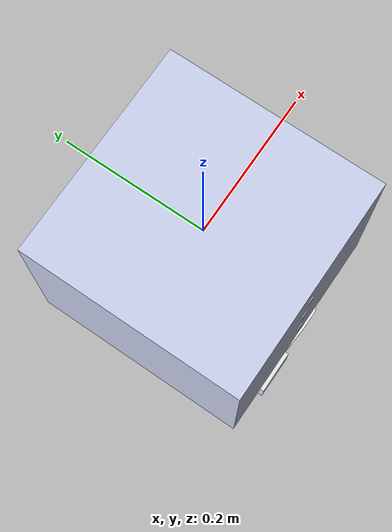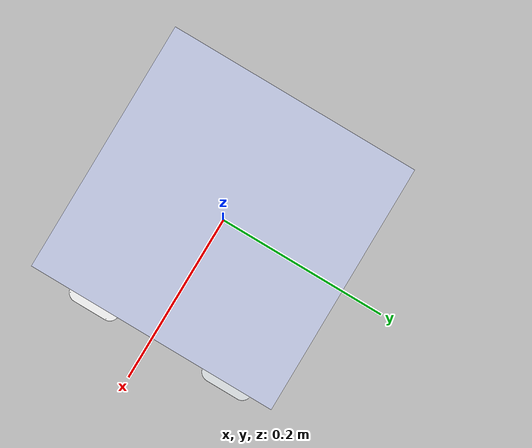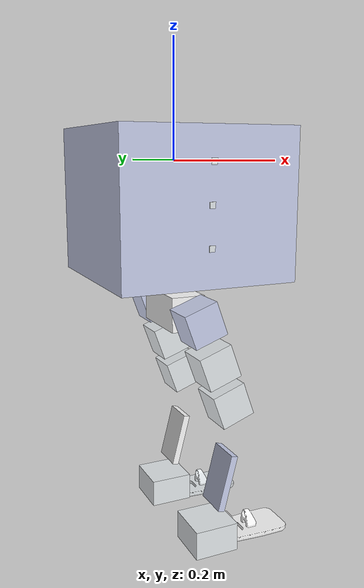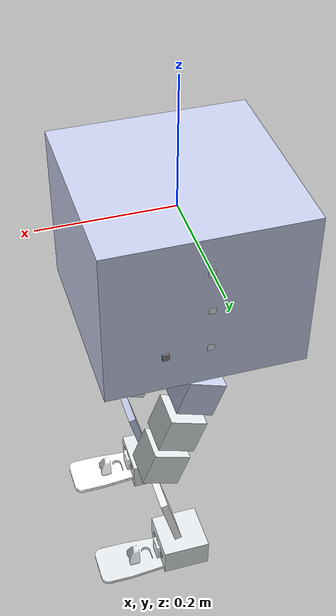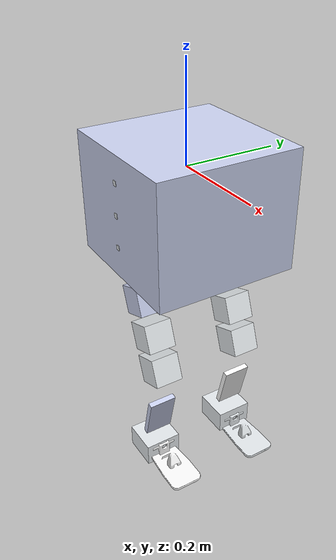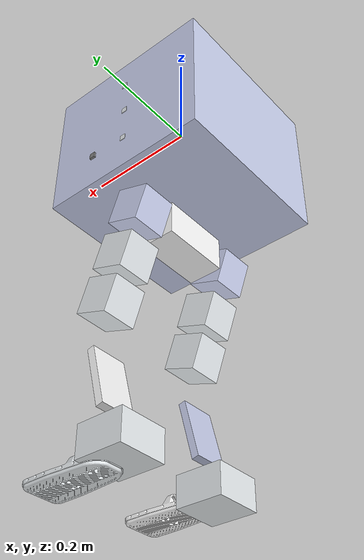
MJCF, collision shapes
<mujoco model="hi_cl_23_240925">
  <compiler angle="radian" meshdir="../meshes/" autolimits="true"/>
  <statistic meansize="0.118985" extent="0.96937" center="0 0 -0.30025"/>
  <asset>
    <mesh name="base_link" file="base_link.STL"/>
    <mesh name="r_shoulder_pitch_link" file="r_shoulder_pitch_link.STL"/>
    <mesh name="r_shoulder_roll_link" file="r_shoulder_roll_link.STL"/>
    <mesh name="r_arm_yaw_link" file="r_arm_yaw_link.STL"/>
    <mesh name="r_arm_roll_link" file="r_arm_roll_link.STL"/>
    <mesh name="r_wrist_yaw_link" file="r_wrist_yaw_link.STL"/>
    <mesh name="l_shoulder_pitch_link" file="l_shoulder_pitch_link.STL"/>
    <mesh name="l_shoulder_roll_link" file="l_shoulder_roll_link.STL"/>
    <mesh name="l_arm_yaw_link" file="l_arm_yaw_link.STL"/>
    <mesh name="l_arm_roll_link" file="l_arm_roll_link.STL"/>
    <mesh name="l_wrist_yaw_link" file="l_wrist_yaw_link.STL"/>
    <mesh name="loin_yaw_link" file="loin_yaw_link.STL"/>
    <mesh name="r_hip_pitch_link" file="r_hip_pitch_link.STL"/>
    <mesh name="r_hip_roll_link" file="r_hip_roll_link.STL"/>
    <mesh name="r_thigh_link" file="r_thigh_link.STL"/>
    <mesh name="r_calf_link" file="r_calf_link.STL"/>
    <mesh name="r_ankle_pitch_link" file="r_ankle_pitch_link.STL"/>
    <mesh name="r_ankle_roll_link" file="r_ankle_roll_link.STL"/>
    <mesh name="l_hip_pitch_link" file="l_hip_pitch_link.STL"/>
    <mesh name="l_hip_roll_link" file="l_hip_roll_link.STL"/>
    <mesh name="l_thigh_link" file="l_thigh_link.STL"/>
    <mesh name="l_calf_link" file="l_calf_link.STL"/>
    <mesh name="l_ankle_pitch_link" file="l_ankle_pitch_link.STL"/>
    <mesh name="l_ankle_roll_link" file="l_ankle_roll_link.STL"/>
  </asset>
  <worldbody>
    <body name="base_link">
      <inertial pos="0.00381055 0.000553964 -0.0813881" quat="0.929224 0.368892 -0.0201387 0.00744773" mass="8.17529" diaginertia="0.132187 0.0713242 0.0707874"/>
      <joint name="base_link_free_joint" type="free"/>
      <geom type="mesh" contype="0" conaffinity="0" group="1" density="0" rgba="0.79216 0.81961 0.93333 1" mesh="base_link"/>
      <geom size="0.15 0.15 0.125" pos="0 0 -0.07" type="box" rgba="0.79216 0.81961 0.93333 1"/>
      <geom pos="0 -0.08085 0" type="mesh" contype="0" conaffinity="0" group="1" density="0" rgba="0.89804 0.91765 0.92941 1" mesh="r_shoulder_pitch_link"/>
      <geom size="0.005 0.005 0.005" pos="0 -0.08085 0" type="box" rgba="0.89804 0.91765 0.92941 1"/>
      <geom pos="0 -0.146 0" type="mesh" contype="0" conaffinity="0" group="1" density="0" rgba="0.89804 0.91765 0.92941 1" mesh="r_shoulder_roll_link"/>
      <geom size="0.005 0.005 0.005" pos="0 -0.146 0" type="box" rgba="0.89804 0.91765 0.92941 1"/>
      <geom pos="-0.0026 -0.146 -0.06495" quat="0.707107 0 0 0.707107" type="mesh" contype="0" conaffinity="0" group="1" density="0" rgba="0.89804 0.91765 0.92941 1" mesh="r_arm_yaw_link"/>
      <geom size="0.005 0.005 0.005" pos="-0.0026 -0.146 -0.06495" quat="0.707107 0 0 0.707107" type="box" rgba="0.89804 0.91765 0.92941 1"/>
      <geom pos="-0.0026 -0.146 -0.1314" quat="0.5 -0.5 -0.5 0.5" type="mesh" contype="0" conaffinity="0" group="1" density="0" rgba="0.89804 0.91765 0.92941 1" mesh="r_arm_roll_link"/>
      <geom size="0.005 0.005 0.005" pos="-0.0026 -0.146 -0.1314" quat="0.5 -0.5 -0.5 0.5" type="box" rgba="0.89804 0.91765 0.92941 1"/>
      <geom pos="0.06235 -0.1434 -0.1314" quat="0.5 -0.5 -0.5 0.5" type="mesh" contype="0" conaffinity="0" group="1" density="0" rgba="0.49804 0.49804 0.49804 1" mesh="r_wrist_yaw_link"/>
      <geom size="0.005 0.005 0.005" pos="0.06235 -0.1434 -0.1314" quat="0.5 -0.5 -0.5 0.5" type="box" rgba="0.49804 0.49804 0.49804 1"/>
      <geom pos="0 0.08085 0" type="mesh" contype="0" conaffinity="0" group="1" density="0" rgba="1 1 1 1" mesh="l_shoulder_pitch_link"/>
      <geom size="0.005 0.005 0.005" pos="0 0.08085 0" type="box" rgba="1 1 1 1"/>
      <geom pos="0 0.146 0" type="mesh" contype="0" conaffinity="0" group="1" density="0" rgba="0.89804 0.91765 0.92941 1" mesh="l_shoulder_roll_link"/>
      <geom size="0.005 0.005 0.005" pos="0 0.146 0" type="box" rgba="0.89804 0.91765 0.92941 1"/>
      <geom pos="-0.0026 0.146 -0.06495" quat="0.707107 0 0 0.707107" type="mesh" contype="0" conaffinity="0" group="1" density="0" rgba="0.89804 0.91765 0.92941 1" mesh="l_arm_yaw_link"/>
      <geom size="0.005 0.005 0.005" pos="-0.0026 0.146 -0.06495" quat="0.707107 0 0 0.707107" type="box" rgba="0.89804 0.91765 0.92941 1"/>
      <geom pos="-0.0026 0.146 -0.1314" quat="0.5 -0.5 -0.5 0.5" type="mesh" contype="0" conaffinity="0" group="1" density="0" rgba="0.89804 0.91765 0.92941 1" mesh="l_arm_roll_link"/>
      <geom size="0.005 0.005 0.005" pos="-0.0026 0.146 -0.1314" quat="0.5 -0.5 -0.5 0.5" type="box" rgba="0.89804 0.91765 0.92941 1"/>
      <geom pos="0.06235 0.1486 -0.1314" quat="0.5 -0.5 -0.5 0.5" type="mesh" contype="0" conaffinity="0" group="1" density="0" rgba="0.49804 0.49804 0.49804 1" mesh="l_wrist_yaw_link"/>
      <geom size="0.005 0.005 0.005" pos="0.06235 0.1486 -0.1314" quat="0.5 -0.5 -0.5 0.5" type="box" rgba="0.49804 0.49804 0.49804 1"/>
      <geom pos="0 0 -0.19425" type="mesh" contype="0" conaffinity="0" group="1" density="0" rgba="1 1 1 1" mesh="loin_yaw_link"/>
      <geom size="0.03 0.06 0.03" pos="0 0 -0.25425" type="box" rgba="1 1 1 1"/>
      <body name="r_hip_pitch_link" pos="0 -0.02875 -0.2585" quat="0.984727 0 -0.174108 0">
        <inertial pos="-0.00022626 -0.06684 9.015e-05" quat="0.00547687 0.70814 0.00618691 0.706023" mass="0.661" diaginertia="0.000226308 0.000197812 0.00018617"/>
        <joint name="r_hip_pitch_joint" pos="0 0 0" axis="0 1 0" range="-1 1.8"/>
        <geom type="mesh" contype="0" conaffinity="0" group="1" density="0" rgba="0.79216 0.81961 0.93333 1" mesh="r_hip_pitch_link"/>
        <geom size="0.03 0.03 0.03" pos="0 -0.07 0" type="box" rgba="0.79216 0.81961 0.93333 1"/>
        <body name="r_hip_roll_link" pos="0 -0.06875 0">
          <inertial pos="0.00088845 -0.00019059 -0.066357" quat="0.706188 0.0128574 0.0153584 0.707741" mass="0.54219" diaginertia="0.00121651 0.000969831 0.000402787"/>
          <joint name="r_hip_roll_joint" pos="0 0 0" axis="1 0 0" range="-0.5 0.12"/>
          <geom type="mesh" contype="0" conaffinity="0" group="1" density="0" rgba="0.89804 0.91765 0.92941 1" mesh="r_hip_roll_link"/>
          <geom size="0.03 0.03 0.03" pos="0 0 -0.08" type="box" rgba="0.89804 0.91765 0.92941 1"/>
          <body name="r_thigh_link" pos="0 0 -0.09425">
            <inertial pos="0 0.0019897 -0.066297" quat="0.978272 0.207328 0 0" mass="0.23898" diaginertia="0.00050536 0.000333126 0.000283014"/>
            <joint name="r_thigh_joint" pos="0 0 0" axis="0 0 1" range="-0.6 0.3"/>
            <geom type="mesh" contype="0" conaffinity="0" group="1" density="0" rgba="0.89804 0.91765 0.92941 1" mesh="r_thigh_link"/>
            <geom size="0.03 0.03 0.03" pos="0 0 -0.06" type="box" rgba="0.89804 0.91765 0.92941 1"/>
            <body name="r_calf_link" pos="0 0 -0.10575" quat="0.955336 0 0.29552 0">
              <inertial pos="-8.965e-05 -0.0020679 -0.050651" quat="0.999997 -3.20864e-05 0.000268903 0.00258656" mass="1.2" diaginertia="0.0068013 0.006751 0.000347148"/>
              <joint name="r_calf_joint" pos="0 0 0" axis="0 1 0" range="-0.8 1.5"/>
              <geom type="mesh" contype="0" conaffinity="0" group="1" density="0" rgba="0.79216 0.81961 0.93333 1" mesh="r_calf_link"/>
              <geom size="0.006 0.03 0.05" pos="0 0 -0.1" type="box" rgba="0.79216 0.81961 0.93333 1"/>
              <body name="r_ankle_pitch_link" pos="0 0 -0.2" quat="0.992198 0 -0.124675 0">
                <inertial pos="0.0072806 0.00051939 2.2469e-12" quat="0.00438016 0.707093 -0.00438016 0.707093" mass="0.16682" diaginertia="0.00028526 0.000199412 0.000118688"/>
                <joint name="r_ankle_pitch_joint" pos="0 0 0" axis="0 1 0" range="-0.45 1.15"/>
                <geom type="mesh" contype="0" conaffinity="0" group="1" density="0" rgba="0.89804 0.91765 0.92941 1" mesh="r_ankle_pitch_link"/>
                <geom size="0.039 0.04 0.025" type="box" rgba="0.89804 0.91765 0.92941 1"/>
                <body name="r_ankle_roll_link" pos="0.07525 -0.0003 0">
                  <inertial pos="-0.040001 9.312e-05 -0.023563" quat="0.52257 0.475345 0.477488 0.522468" mass="0.5" diaginertia="0.00150711 0.00139424 0.000399275"/>
                  <joint name="r_ankle_roll_joint" pos="0 0 0" axis="1 0 0" range="-0.15 0.15"/>
                  <geom type="mesh" contype="0" conaffinity="0" group="1" density="0" rgba="1 1 1 1" mesh="r_ankle_roll_link"/>
                  <geom type="mesh" rgba="1 1 1 1" mesh="r_ankle_roll_link"/>
                </body>
              </body>
            </body>
          </body>
        </body>
      </body>
      <body name="l_hip_pitch_link" pos="0 0.02875 -0.2585" quat="0.984727 0 -0.174108 0">
        <inertial pos="-0.00022626 0.0670062 8.992e-05" quat="0.00901773 0.708032 -0.00287024 0.706117" mass="0.661" diaginertia="0.000226712 0.000197821 0.000186567"/>
        <joint name="l_hip_pitch_joint" pos="0 0 0" axis="0 1 0" range="-1 1.8"/>
        <geom type="mesh" contype="0" conaffinity="0" group="1" density="0" rgba="0.79216 0.81961 0.93333 1" mesh="l_hip_pitch_link"/>
        <geom size="0.03 0.03 0.03" pos="0 0.07 0" type="box" rgba="0.79216 0.81961 0.93333 1"/>
        <body name="l_hip_roll_link" pos="0 0.06875 0">
          <inertial pos="0.00051186 -0.000186 -0.0663568" quat="0.707757 0.0164353 0.0189123 0.706012" mass="0.54219" diaginertia="0.00121706 0.000970086 0.000402563"/>
          <joint name="l_hip_roll_joint" pos="0 0 0" axis="1 0 0" range="-0.12 0.5"/>
          <geom type="mesh" contype="0" conaffinity="0" group="1" density="0" rgba="0.89804 0.91765 0.92941 1" mesh="l_hip_roll_link"/>
          <geom size="0.03 0.03 0.03" pos="0 0 -0.08" type="box" rgba="0.89804 0.91765 0.92941 1"/>
          <body name="l_thigh_link" pos="0 0 -0.09425">
            <inertial pos="0 -0.0019897 -0.066297" quat="0.978272 -0.207328 0 0" mass="0.23898" diaginertia="0.00050536 0.000333126 0.000283014"/>
            <joint name="l_thigh_joint" pos="0 0 0" axis="0 0 1" range="-0.3 0.6"/>
            <geom type="mesh" contype="0" conaffinity="0" group="1" density="0" rgba="0.89804 0.91765 0.92941 1" mesh="l_thigh_link"/>
            <geom size="0.03 0.03 0.03" pos="0 0 -0.06" type="box" rgba="0.89804 0.91765 0.92941 1"/>
            <body name="l_calf_link" pos="0 0 -0.10575" quat="0.955336 0 0.29552 0">
              <inertial pos="8.965e-05 0.00206794 -0.0506511" quat="0.999997 3.20874e-05 -0.000268903 0.00258399" mass="1.2" diaginertia="0.0068013 0.00675095 0.000347148"/>
              <joint name="l_calf_joint" pos="0 0 0" axis="0 1 0" range="-0.8 1.5"/>
              <geom type="mesh" contype="0" conaffinity="0" group="1" density="0" rgba="1 1 1 1" mesh="l_calf_link"/>
              <geom size="0.006 0.03 0.05" pos="0 0 -0.1" type="box" rgba="1 1 1 1"/>
              <body name="l_ankle_pitch_link" pos="0 0 -0.2" quat="0.992198 0 -0.124675 0">
                <inertial pos="0.00467932 -0.00047699 2.1252e-12" quat="-0.00221869 0.707103 0.00221869 0.707103" mass="0.16682" diaginertia="0.00030766 0.000221794 0.000119806"/>
                <joint name="l_ankle_pitch_joint" pos="0 0 0" axis="0 1 0" range="-0.45 1.15"/>
                <geom type="mesh" contype="0" conaffinity="0" group="1" density="0" rgba="0.89804 0.91765 0.92941 1" mesh="l_ankle_pitch_link"/>
                <geom size="0.039 0.04 0.025" type="box" rgba="0.89804 0.91765 0.92941 1"/>
                <body name="l_ankle_roll_link" pos="0.07525 0.0003 0">
                  <inertial pos="-0.03772 9.584e-05 -0.02425" quat="0.531144 0.465745 0.4679 0.531071" mass="0.5" diaginertia="0.00145001 0.00134913 0.000393768"/>
                  <joint name="l_ankle_roll_joint" pos="0 0 0" axis="1 0 0" range="-0.15 0.15"/>
                  <geom type="mesh" contype="0" conaffinity="0" group="1" density="0" rgba="0.89804 0.91765 0.92941 1" mesh="l_ankle_roll_link"/>
                  <geom type="mesh" rgba="0.89804 0.91765 0.92941 1" mesh="l_ankle_roll_link"/>
                </body>
              </body>
            </body>
          </body>
        </body>
      </body>
    </body>
  </worldbody>
</mujoco>
